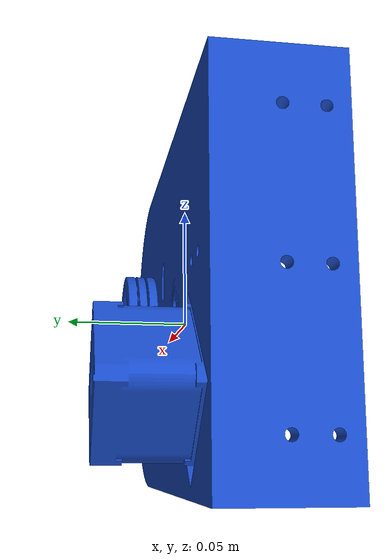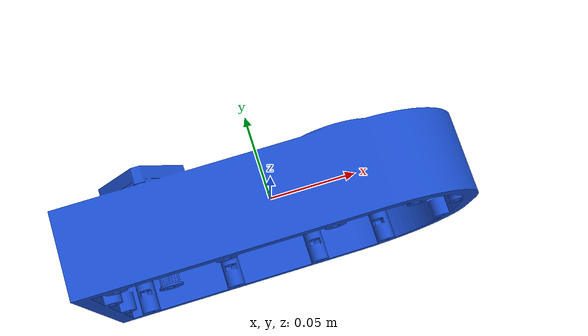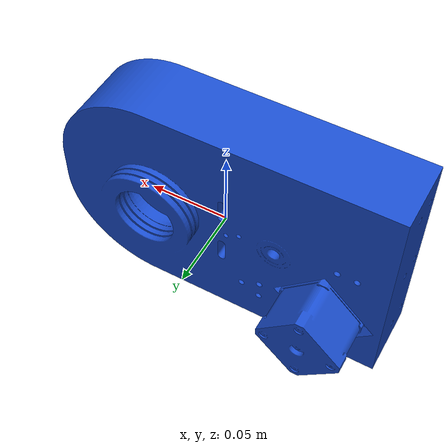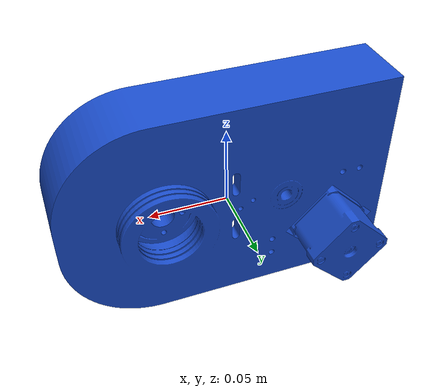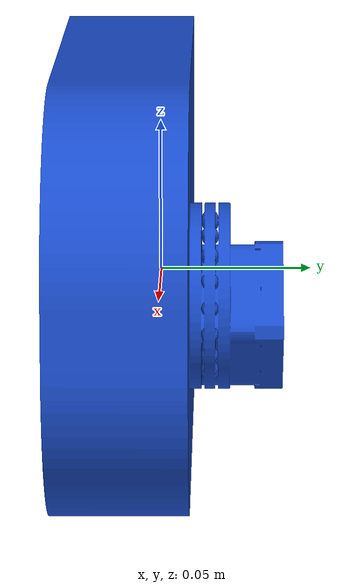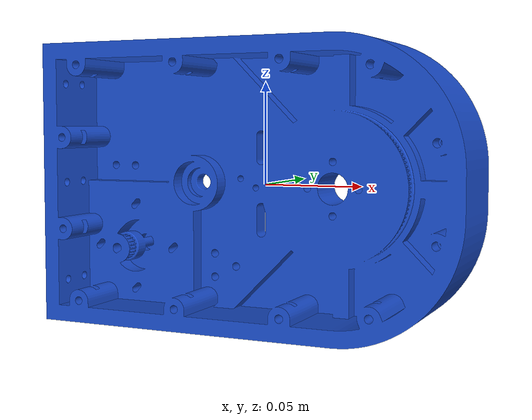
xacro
<?xml version="1.0"?>
<robot name="atom_scara" xmlns:xacro="http://www.ros.org/wiki/xacro">

    <material name="atom_blue">
        <color rgba="0.1 0.3 0.8 1.0"/>
    </material>

    <gazebo>
        <plugin filename="gz_ros2_control-system" name="gz_ros2_control::GazeboSimROS2ControlPlugin">
            <parameters>$(find atom_control)/config/controllers.yaml</parameters>
        </plugin>
    </gazebo>

    <ros2_control name="GazeboSystem" type="system">
        <hardware>
            <plugin>gz_ros2_control/GazeboSimSystem</plugin>
        </hardware>

        <joint name="joint_base_to_link1">
            <command_interface name="position">
                <param name="min">-2.0</param>
                <param name="max">2.0</param>
            </command_interface>
            <state_interface name="position">
                <param name="initial_value">0.0</param>
            </state_interface>
            <state_interface name="velocity"/>
        </joint>

        <joint name="joint_z_axis_arm1">
            <command_interface name="position">
                <param name="min">-0.1</param>
                <param name="max">0.20</param>
            </command_interface>
            <state_interface name="position">
                <param name="initial_value">0.0</param>
            </state_interface>
            <state_interface name="velocity"/>
        </joint>

        <joint name="joint_arm1_link_arm2_link">
            <command_interface name="position">
                <param name="min">-2.0</param>
                <param name="max">4.0</param>
            </command_interface>
            <state_interface name="position">
                <param name="initial_value">0.0</param>
            </state_interface>
            <state_interface name="velocity"/>
        </joint>
    </ros2_control>

    <link name="world"/>

    <link name="base_link">
        <visual>
            <origin xyz="0 0 0" rpy="0 0 0"/>
            <geometry>
                <mesh filename="package://atom_description/meshes/base.stl" scale="0.001 0.001 0.001"/>
            </geometry>
            <material name="atom_blue"/>
        </visual>
        <inertial>
            <mass value="1.0"/>
            <origin xyz="0 0 0" rpy="0 0 0"/>
            <inertia ixx="0.01" ixy="0.0" ixz="0.0" iyy="0.01" iyz="0.0" izz="0.01"/>
        </inertial>
    </link>

    <joint name="fixed_base" type="fixed">
        <parent link="world"/>
        <child link="base_link"/>
        <origin xyz="0 0 0" rpy="0 0 0"/>
    </joint>

    </robot>
